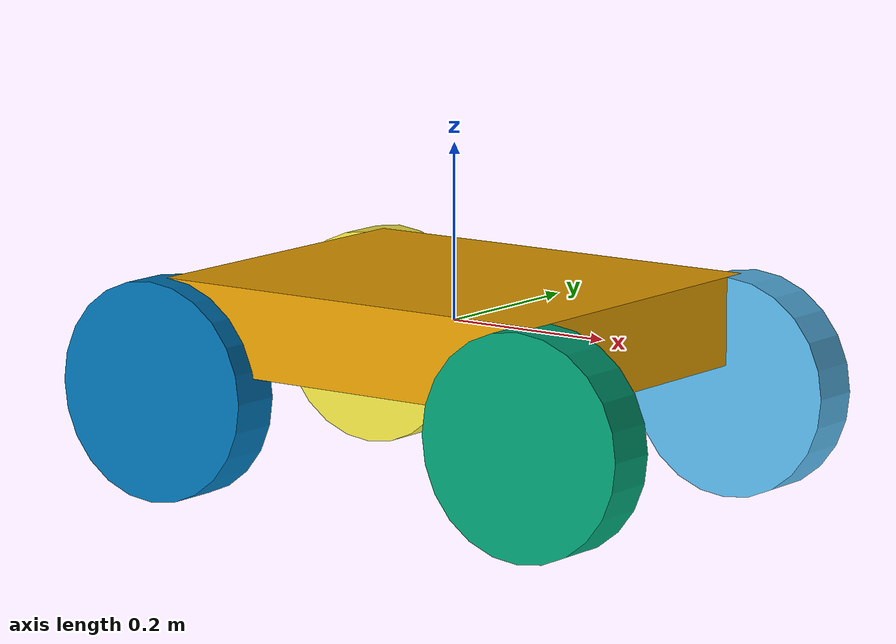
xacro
<?xml version="1.0"?>
<robot xmlns:xacro="http://www.ros.org/wiki/xacro" name="differential_robot">

    <!-- Robot dimensions -->
    <xacro:property name="body_length" value="0.5"/>
    <xacro:property name="body_width" value="0.4"/>
    <xacro:property name="body_height" value="0.1"/>

    <!-- Wheel dimensions -->
    <xacro:property name="wheel_radius" value="0.125"/>
    <xacro:property name="wheel_width" value="0.06"/>
    <xacro:property name="wheel_separation" value="${body_width}"/>

    <!-- Constants -->

    <!-- Body -->
    <link name="base_link">
        <visual>
            <geometry>
                <box size="${body_length} ${body_width} ${body_height}"/>
            </geometry>
        </visual>
    </link>

    <!-- Front Left Wheel -->
    <link name="front_left_wheel_link">
        <visual>
            <origin xyz="0 0 0" rpy="${pi/2} 0 0"/>
            <geometry>
                <cylinder radius="${wheel_radius}"
                          length="${wheel_width}"/>
            </geometry>
        </visual>
    </link>

    <!-- Front Left Wheel Joint -->
    <joint name="front_left_wheel_joint" type="continuous">
        <parent link="base_link"/>
        <child link="front_left_wheel_link"/>
        <origin xyz="${body_length/2} ${wheel_separation/2} ${body_height/2 - wheel_radius}"
                rpy="0 0 0"/>
        <axis xyz="0 1 0"/>
    </joint>

    <!-- Front Right Wheel -->
    <link name="front_right_wheel_link">
        <visual>
            <origin xyz="0 0 0" rpy="${pi/2} 0 0"/>
            <geometry>
                <cylinder radius="${wheel_radius}"
                          length="${wheel_width}"/>
            </geometry>
        </visual>
    </link>

    <!-- Front Right Wheel Joint -->
    <joint name="front_right_wheel_joint" type="continuous">
        <parent link="base_link"/>
        <child link="front_right_wheel_link"/>
        <origin xyz="${body_length/2} ${-wheel_separation/2} ${body_height/2 - wheel_radius}"
                rpy="0 0 0"/>
        <axis xyz="0 1 0"/>
    </joint>

    <!-- Rear Left Wheel -->
    <link name="rear_left_wheel_link">
        <visual>
            <origin xyz="0 0 0" rpy="${pi/2} 0 0"/>
            <geometry>
                <cylinder radius="${wheel_radius}"
                            length="${wheel_width}"/>
            </geometry>
        </visual>
    </link>

    <!-- Rear left Wheel Joint -->
    <joint name="rear_left_wheel_joint" type="continuous">
        <parent link="base_link"/>
        <child link="rear_left_wheel_link"/>
        <origin xyz="${-body_length/2} ${wheel_separation/2} ${body_height/2 - wheel_radius}"
                rpy="0 0 0"/>
        <axis xyz="0 1 0"/>
    </joint>

    <!-- Rear Right Wheel -->
    <link name="rear_right_wheel_link">
        <visual>
            <origin xyz="0 0 0" rpy="${pi/2} 0 0"/>
            <geometry>
                <cylinder radius="${wheel_radius}"
                            length="${wheel_width}"/>
            </geometry>
        </visual>
    </link>

    <!-- Rear Right Wheel Joint -->
    <joint name="rear_right_wheel_joint" type="continuous">
        <parent link="base_link"/>
        <child link="rear_right_wheel_link"/>
        <origin xyz="${-body_length/2} ${-wheel_separation/2} ${body_height/2 - wheel_radius}"
                rpy="0 0 0"/>
        <axis xyz="0 1 0"/>
    </joint>

</robot>
